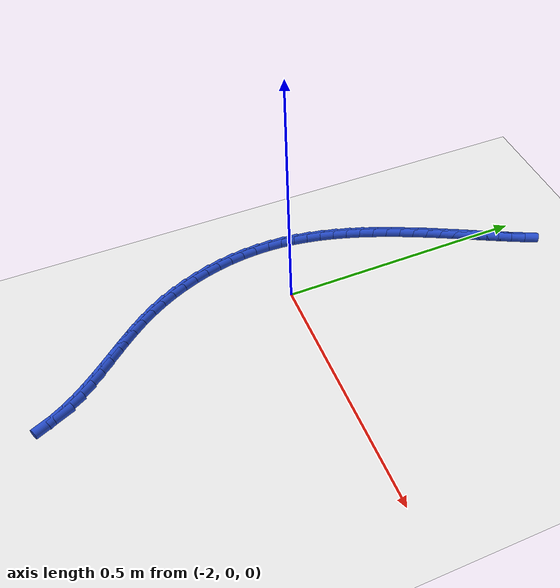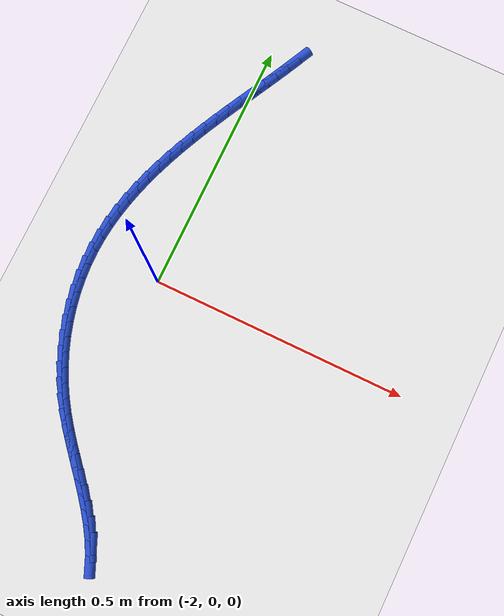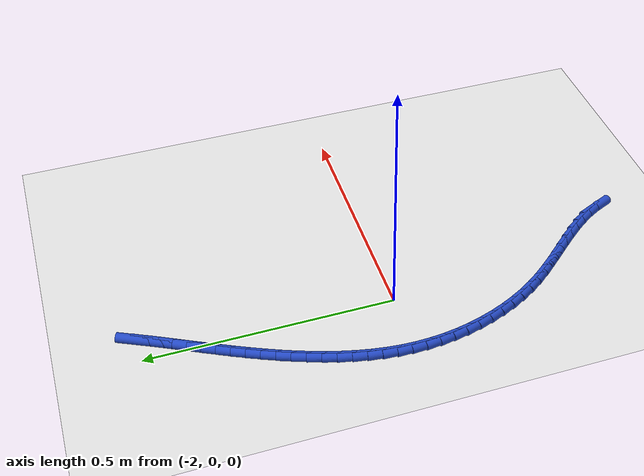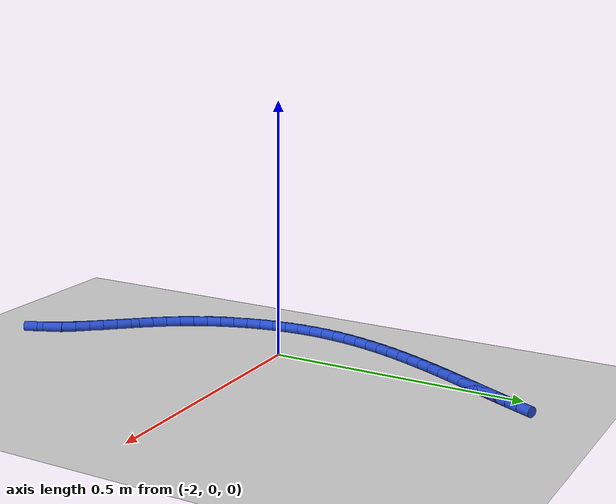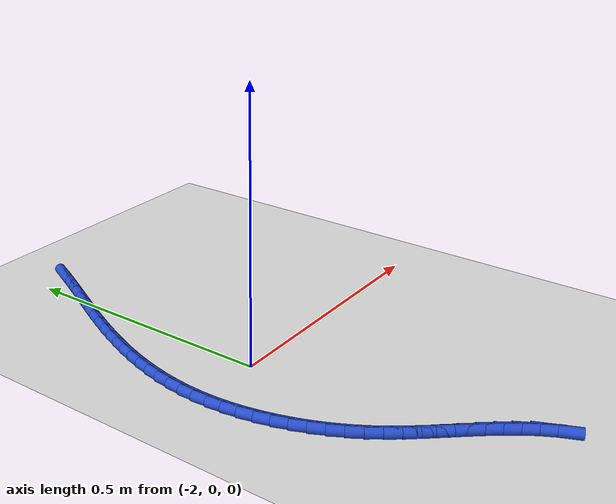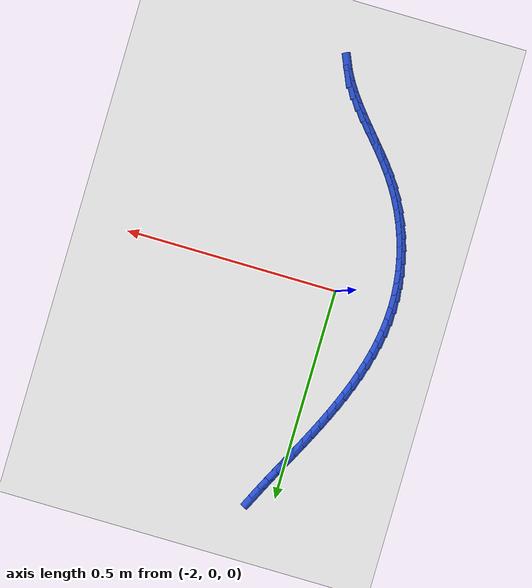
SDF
<sdf version="1.6">
 <world name="default">
  <model name="ground_plane">
   <static>1</static>
   <link name="link">
    <collision name="collision">
     <geometry><plane><normal>0 0 1</normal><size>100 100</size></plane></geometry>
     <surface><friction><ode><mu>100</mu><mu2>50</mu2></ode></friction></surface>
    </collision>
    <visual name="visual">
     <cast_shadows>0</cast_shadows>
     <geometry><plane><normal>0 0 1</normal><size>100 100</size></plane></geometry>
     <material>
      <script><uri>file://media/materials/scripts/gazebo.material</uri><name>Gazebo/WhiteGlow</name></script>
     </material>
    </visual>
   </link>
  </model>
  <model name="line">
   <link name="link_101">
    <pose>-1.9530338869086277 0.4996848741113469 0.01 0 1.57 1.114196634679016</pose>
    <collision name="collision">
     <geometry><cylinder><radius>0.01</radius><length>0.08</length></cylinder></geometry>
    </collision>
    <visual name="visual">
     <material>
      <script><name>Gazebo/Blue</name><uri>file://media/materials/scripts/gazebo.material</uri></script>
     </material>
     <geometry><cylinder><radius>0.01</radius><length>0.08</length></cylinder></geometry>
    </visual>
   </link>
   <link name="link_102">
    <pose>-1.965360853261522 0.47459032609833357 0.01 0 1.57 1.1027418164881235</pose>
    <collision name="collision">
     <geometry><cylinder><radius>0.01</radius><length>0.08</length></cylinder></geometry>
    </collision>
    <visual name="visual">
     <material>
      <script><name>Gazebo/Blue</name><uri>file://media/materials/scripts/gazebo.material</uri></script>
     </material>
     <geometry><cylinder><radius>0.01</radius><length>0.08</length></cylinder></geometry>
    </visual>
   </link>
   <link name="link_103">
    <pose>-1.9778984266809578 0.4497890266388718 0.01 0 1.57 1.095510572376092</pose>
    <collision name="collision">
     <geometry><cylinder><radius>0.01</radius><length>0.08</length></cylinder></geometry>
    </collision>
    <visual name="visual">
     <material>
      <script><name>Gazebo/Blue</name><uri>file://media/materials/scripts/gazebo.material</uri></script>
     </material>
     <geometry><cylinder><radius>0.01</radius><length>0.08</length></cylinder></geometry>
    </visual>
   </link>
   <link name="link_104">
    <pose>-1.9905785888686636 0.42514981778400085 0.01 0 1.57 1.092607699348567</pose>
    <collision name="collision">
     <geometry><cylinder><radius>0.01</radius><length>0.08</length></cylinder></geometry>
    </collision>
    <visual name="visual">
     <material>
      <script><name>Gazebo/Blue</name><uri>file://media/materials/scripts/gazebo.material</uri></script>
     </material>
     <geometry><cylinder><radius>0.01</radius><length>0.08</length></cylinder></geometry>
    </visual>
   </link>
   <link name="link_105">
    <pose>-2.003333321526366 0.4005415415847607 0.01 0 1.57 1.0940569829507378</pose>
    <collision name="collision">
     <geometry><cylinder><radius>0.01</radius><length>0.08</length></cylinder></geometry>
    </collision>
    <visual name="visual">
     <material>
      <script><name>Gazebo/Blue</name><uri>file://media/materials/scripts/gazebo.material</uri></script>
     </material>
     <geometry><cylinder><radius>0.01</radius><length>0.08</length></cylinder></geometry>
    </visual>
   </link>
   <link name="link_106">
    <pose>-2.016094606355793 0.37583304009219004 0.01 0 1.57 1.0998020782813458</pose>
    <collision name="collision">
     <geometry><cylinder><radius>0.01</radius><length>0.08</length></cylinder></geometry>
    </collision>
    <visual name="visual">
     <material>
      <script><name>Gazebo/Blue</name><uri>file://media/materials/scripts/gazebo.material</uri></script>
     </material>
     <geometry><cylinder><radius>0.01</radius><length>0.08</length></cylinder></geometry>
    </visual>
   </link>
   <link name="link_107">
    <pose>-2.028794416352748 0.35089317765342354 0.01 0 1.57 1.1095997850768602</pose>
    <collision name="collision">
     <geometry><cylinder><radius>0.01</radius><length>0.08</length></cylinder></geometry>
    </collision>
    <visual name="visual">
     <material>
      <script><name>Gazebo/Blue</name><uri>file://media/materials/scripts/gazebo.material</uri></script>
     </material>
     <geometry><cylinder><radius>0.01</radius><length>0.08</length></cylinder></geometry>
    </visual>
   </link>
   <link name="link_108">
    <pose>-2.041352094635243 0.325623164057213 0.01 0 1.57 1.1230199679160802</pose>
    <collision name="collision">
     <geometry><cylinder><radius>0.01</radius><length>0.08</length></cylinder></geometry>
    </collision>
    <visual name="visual">
     <material>
      <script><name>Gazebo/Blue</name><uri>file://media/materials/scripts/gazebo.material</uri></script>
     </material>
     <geometry><cylinder><radius>0.01</radius><length>0.08</length></cylinder></geometry>
    </visual>
   </link>
   <link name="link_109">
    <pose>-2.053649102814853 0.3000212246038629 0.01 0 1.57 1.1400186239832761</pose>
    <collision name="collision">
     <geometry><cylinder><radius>0.01</radius><length>0.08</length></cylinder></geometry>
    </collision>
    <visual name="visual">
     <material>
      <script><name>Gazebo/Blue</name><uri>file://media/materials/scripts/gazebo.material</uri></script>
     </material>
     <geometry><cylinder><radius>0.01</radius><length>0.08</length></cylinder></geometry>
    </visual>
   </link>
   <link name="link_110">
    <pose>-2.0655598300589872 0.2741036973049532 0.01 0 1.57 1.1606613923672933</pose>
    <collision name="collision">
     <geometry><cylinder><radius>0.01</radius><length>0.08</length></cylinder></geometry>
    </collision>
    <visual name="visual">
     <material>
      <script><name>Gazebo/Blue</name><uri>file://media/materials/scripts/gazebo.material</uri></script>
     </material>
     <geometry><cylinder><radius>0.01</radius><length>0.08</length></cylinder></geometry>
    </visual>
   </link>
   <link name="link_111">
    <pose>-2.076958665535054 0.2478869201720635 0.01 0 1.57 1.1850485962658124</pose>
    <collision name="collision">
     <geometry><cylinder><radius>0.01</radius><length>0.08</length></cylinder></geometry>
    </collision>
    <visual name="visual">
     <material>
      <script><name>Gazebo/Blue</name><uri>file://media/materials/scripts/gazebo.material</uri></script>
     </material>
     <geometry><cylinder><radius>0.01</radius><length>0.08</length></cylinder></geometry>
    </visual>
   </link>
   <link name="link_112">
    <pose>-2.0877199984104613 0.22138723121677342 0.01 0 1.57 1.2133079213340239</pose>
    <collision name="collision">
     <geometry><cylinder><radius>0.01</radius><length>0.08</length></cylinder></geometry>
    </collision>
    <visual name="visual">
     <material>
      <script><name>Gazebo/Blue</name><uri>file://media/materials/scripts/gazebo.material</uri></script>
     </material>
     <geometry><cylinder><radius>0.01</radius><length>0.08</length></cylinder></geometry>
    </visual>
   </link>
   <link name="link_113">
    <pose>-2.0977182178526186 0.19462096845066354 0.01 0 1.57 1.2455853774304833</pose>
    <collision name="collision">
     <geometry><cylinder><radius>0.01</radius><length>0.08</length></cylinder></geometry>
    </collision>
    <visual name="visual">
     <material>
      <script><name>Gazebo/Blue</name><uri>file://media/materials/scripts/gazebo.material</uri></script>
     </material>
     <geometry><cylinder><radius>0.01</radius><length>0.08</length></cylinder></geometry>
    </visual>
   </link>
   <link name="link_114">
    <pose>-2.1068277130289332 0.16760446988531327 0.01 0 1.57 1.2820336522140245</pose>
    <collision name="collision">
     <geometry><cylinder><radius>0.01</radius><length>0.08</length></cylinder></geometry>
    </collision>
    <visual name="visual">
     <material>
      <script><name>Gazebo/Blue</name><uri>file://media/materials/scripts/gazebo.material</uri></script>
     </material>
     <geometry><cylinder><radius>0.01</radius><length>0.08</length></cylinder></geometry>
    </visual>
   </link>
   <link name="link_115">
    <pose>-2.1149228731068157 0.14035407353230214 0.01 0 1.57 1.3227969641021649</pose>
    <collision name="collision">
     <geometry><cylinder><radius>0.01</radius><length>0.08</length></cylinder></geometry>
    </collision>
    <visual name="visual">
     <material>
      <script><name>Gazebo/Blue</name><uri>file://media/materials/scripts/gazebo.material</uri></script>
     </material>
     <geometry><cylinder><radius>0.01</radius><length>0.08</length></cylinder></geometry>
    </visual>
   </link>
   <link name="link_116">
    <pose>-2.121878087253672 0.11288611740321076 0.01 0 1.57 1.3679916756396568</pose>
    <collision name="collision">
     <geometry><cylinder><radius>0.01</radius><length>0.08</length></cylinder></geometry>
    </collision>
    <visual name="visual">
     <material>
      <script><name>Gazebo/Blue</name><uri>file://media/materials/scripts/gazebo.material</uri></script>
     </material>
     <geometry><cylinder><radius>0.01</radius><length>0.08</length></cylinder></geometry>
    </visual>
   </link>
   <link name="link_117">
    <pose>-2.1275677446369126 0.0852169395096186 0.01 0 1.57 1.4176823530589753</pose>
    <collision name="collision">
     <geometry><cylinder><radius>0.01</radius><length>0.08</length></cylinder></geometry>
    </collision>
    <visual name="visual">
     <material>
      <script><name>Gazebo/Blue</name><uri>file://media/materials/scripts/gazebo.material</uri></script>
     </material>
     <geometry><cylinder><radius>0.01</radius><length>0.08</length></cylinder></geometry>
    </visual>
   </link>
   <link name="link_118">
    <pose>-2.131866234423946 0.0573628778631056 0.01 0 1.57 1.471853780722434</pose>
    <collision name="collision">
     <geometry><cylinder><radius>0.01</radius><length>0.08</length></cylinder></geometry>
    </collision>
    <visual name="visual">
     <material>
      <script><name>Gazebo/Blue</name><uri>file://media/materials/scripts/gazebo.material</uri></script>
     </material>
     <geometry><cylinder><radius>0.01</radius><length>0.08</length></cylinder></geometry>
    </visual>
   </link>
   <link name="link_119">
    <pose>-2.13464794578218 0.02934027047525116 0.01 0 1.57 1.5303637172672915</pose>
    <collision name="collision">
     <geometry><cylinder><radius>0.01</radius><length>0.08</length></cylinder></geometry>
    </collision>
    <visual name="visual">
     <material>
      <script><name>Gazebo/Blue</name><uri>file://media/materials/scripts/gazebo.material</uri></script>
     </material>
     <geometry><cylinder><radius>0.01</radius><length>0.08</length></cylinder></geometry>
    </visual>
   </link>
   <link name="link_120">
    <pose>-2.1357877376453196 0.0011657178129403144 0.01 0 1.57 -1.5503920742651485</pose>
    <collision name="collision">
     <geometry><cylinder><radius>0.01</radius><length>0.08</length></cylinder></geometry>
    </collision>
    <visual name="visual">
     <material>
      <script><name>Gazebo/Blue</name><uri>file://media/materials/scripts/gazebo.material</uri></script>
     </material>
     <geometry><cylinder><radius>0.01</radius><length>0.08</length></cylinder></geometry>
    </visual>
   </link>
   <link name="link_121">
    <pose>-2.135210586577208 -0.027116179270437826 0.01 0 1.57 -1.4905508843568467</pose>
    <collision name="collision">
     <geometry><cylinder><radius>0.01</radius><length>0.08</length></cylinder></geometry>
    </collision>
    <visual name="visual">
     <material>
      <script><name>Gazebo/Blue</name><uri>file://media/materials/scripts/gazebo.material</uri></script>
     </material>
     <geometry><cylinder><radius>0.01</radius><length>0.08</length></cylinder></geometry>
    </visual>
   </link>
   <link name="link_122">
    <pose>-2.132935383058004 -0.0554083508412907 0.01 0 1.57 -1.4318362648283147</pose>
    <collision name="collision">
     <geometry><cylinder><radius>0.01</radius><length>0.08</length></cylinder></geometry>
    </collision>
    <visual name="visual">
     <material>
      <script><name>Gazebo/Blue</name><uri>file://media/materials/scripts/gazebo.material</uri></script>
     </material>
     <geometry><cylinder><radius>0.01</radius><length>0.08</length></cylinder></geometry>
    </visual>
   </link>
   <link name="link_123">
    <pose>-2.1289913449553346 -0.08360795712336169 0.01 0 1.57 -1.3739909068071887</pose>
    <collision name="collision">
     <geometry><cylinder><radius>0.01</radius><length>0.08</length></cylinder></geometry>
    </collision>
    <visual name="visual">
     <material>
      <script><name>Gazebo/Blue</name><uri>file://media/materials/scripts/gazebo.material</uri></script>
     </material>
     <geometry><cylinder><radius>0.01</radius><length>0.08</length></cylinder></geometry>
    </visual>
   </link>
   <link name="link_124">
    <pose>-2.1234076901368266 -0.11161215834039412 0.01 0 1.57 -1.3167493007988877</pose>
    <collision name="collision">
     <geometry><cylinder><radius>0.01</radius><length>0.08</length></cylinder></geometry>
    </collision>
    <visual name="visual">
     <material>
      <script><name>Gazebo/Blue</name><uri>file://media/materials/scripts/gazebo.material</uri></script>
     </material>
     <geometry><cylinder><radius>0.01</radius><length>0.08</length></cylinder></geometry>
    </visual>
   </link>
   <link name="link_125">
    <pose>-2.1162136364701034 -0.13931811471613192 0.01 0 1.57 -1.2598422371809712</pose>
    <collision name="collision">
     <geometry><cylinder><radius>0.01</radius><length>0.08</length></cylinder></geometry>
    </collision>
    <visual name="visual">
     <material>
      <script><name>Gazebo/Blue</name><uri>file://media/materials/scripts/gazebo.material</uri></script>
     </material>
     <geometry><cylinder><radius>0.01</radius><length>0.08</length></cylinder></geometry>
    </visual>
   </link>
   <link name="link_126">
    <pose>-2.1074384018227925 -0.166622986474317 0.01 0 1.57 -1.2030004830175172</pose>
    <collision name="collision">
     <geometry><cylinder><radius>0.01</radius><length>0.08</length></cylinder></geometry>
    </collision>
    <visual name="visual">
     <material>
      <script><name>Gazebo/Blue</name><uri>file://media/materials/scripts/gazebo.material</uri></script>
     </material>
     <geometry><cylinder><radius>0.01</radius><length>0.08</length></cylinder></geometry>
    </visual>
   </link>
   <link name="link_127">
    <pose>-2.09711120406252 -0.19342393383869333 0.01 0 1.57 -1.1459580327992736</pose>
    <collision name="collision">
     <geometry><cylinder><radius>0.01</radius><length>0.08</length></cylinder></geometry>
    </collision>
    <visual name="visual">
     <material>
      <script><name>Gazebo/Blue</name><uri>file://media/materials/scripts/gazebo.material</uri></script>
     </material>
     <geometry><cylinder><radius>0.01</radius><length>0.08</length></cylinder></geometry>
    </visual>
   </link>
   <link name="link_128">
    <pose>-2.0852612610569112 -0.2196181170330043 0.01 0 1.57 -1.0884553214263617</pose>
    <collision name="collision">
     <geometry><cylinder><radius>0.01</radius><length>0.08</length></cylinder></geometry>
    </collision>
    <visual name="visual">
     <material>
      <script><name>Gazebo/Blue</name><uri>file://media/materials/scripts/gazebo.material</uri></script>
     </material>
     <geometry><cylinder><radius>0.01</radius><length>0.08</length></cylinder></geometry>
    </visual>
   </link>
   <link name="link_129">
    <pose>-2.07191779067359 -0.24510269628099304 0.01 0 1.57 -1.0302427679231416</pose>
    <collision name="collision">
     <geometry><cylinder><radius>0.01</radius><length>0.08</length></cylinder></geometry>
    </collision>
    <visual name="visual">
     <material>
      <script><name>Gazebo/Blue</name><uri>file://media/materials/scripts/gazebo.material</uri></script>
     </material>
     <geometry><cylinder><radius>0.01</radius><length>0.08</length></cylinder></geometry>
    </visual>
   </link>
   <link name="link_130">
    <pose>-2.0571100107801854 -0.26977483180640305 0.01 0 1.57 -0.9714732631685052</pose>
    <collision name="collision">
     <geometry><cylinder><radius>0.01</radius><length>0.08</length></cylinder></geometry>
    </collision>
    <visual name="visual">
     <material>
      <script><name>Gazebo/Blue</name><uri>file://media/materials/scripts/gazebo.material</uri></script>
     </material>
     <geometry><cylinder><radius>0.01</radius><length>0.08</length></cylinder></geometry>
    </visual>
   </link>
   <link name="link_131">
    <pose>-2.0408754891740926 -0.293539270305672 0.01 0 1.57 -0.9201535259519719</pose>
    <collision name="collision">
     <geometry><cylinder><radius>0.01</radius><length>0.08</length></cylinder></geometry>
    </collision>
    <visual name="visual">
     <material>
      <script><name>Gazebo/Blue</name><uri>file://media/materials/scripts/gazebo.material</uri></script>
     </material>
     <geometry><cylinder><radius>0.01</radius><length>0.08</length></cylinder></geometry>
    </visual>
   </link>
   <link name="link_132">
    <pose>-2.023427491756931 -0.31646039201786086 0.01 0 1.57 -0.8839765862421466</pose>
    <collision name="collision">
     <geometry><cylinder><radius>0.01</radius><length>0.08</length></cylinder></geometry>
    </collision>
    <visual name="visual">
     <material>
      <script><name>Gazebo/Blue</name><uri>file://media/materials/scripts/gazebo.material</uri></script>
     </material>
     <geometry><cylinder><radius>0.01</radius><length>0.08</length></cylinder></geometry>
    </visual>
   </link>
   <link name="link_133">
    <pose>-2.0051463522454647 -0.3387543695266763 0.01 0 1.57 -0.8630844795093032</pose>
    <collision name="collision">
     <geometry><cylinder><radius>0.01</radius><length>0.08</length></cylinder></geometry>
    </collision>
    <visual name="visual">
     <material>
      <script><name>Gazebo/Blue</name><uri>file://media/materials/scripts/gazebo.material</uri></script>
     </material>
     <geometry><cylinder><radius>0.01</radius><length>0.08</length></cylinder></geometry>
    </visual>
   </link>
   <link name="link_134">
    <pose>-1.9864190268556303 -0.36064339240166027 0.01 0 1.57 -0.8573778164419092</pose>
    <collision name="collision">
     <geometry><cylinder><radius>0.01</radius><length>0.08</length></cylinder></geometry>
    </collision>
    <visual name="visual">
     <material>
      <script><name>Gazebo/Blue</name><uri>file://media/materials/scripts/gazebo.material</uri></script>
     </material>
     <geometry><cylinder><radius>0.01</radius><length>0.08</length></cylinder></geometry>
    </visual>
   </link>
   <link name="link_135">
    <pose>-1.9676324718033642 -0.38234965021235384 0.01 0 1.57 -0.8669701136964764</pose>
    <collision name="collision">
     <geometry><cylinder><radius>0.01</radius><length>0.08</length></cylinder></geometry>
    </collision>
    <visual name="visual">
     <material>
      <script><name>Gazebo/Blue</name><uri>file://media/materials/scripts/gazebo.material</uri></script>
     </material>
     <geometry><cylinder><radius>0.01</radius><length>0.08</length></cylinder></geometry>
    </visual>
   </link>
   <link name="link_136">
    <pose>-1.9491736433046032 -0.4040953325282981 0.01 0 1.57 -0.8922349989008493</pose>
    <collision name="collision">
     <geometry><cylinder><radius>0.01</radius><length>0.08</length></cylinder></geometry>
    </collision>
    <visual name="visual">
     <material>
      <script><name>Gazebo/Blue</name><uri>file://media/materials/scripts/gazebo.material</uri></script>
     </material>
     <geometry><cylinder><radius>0.01</radius><length>0.08</length></cylinder></geometry>
    </visual>
   </link>
   <link name="link_137">
    <pose>-1.931429497575285 -0.4261026289190344 0.01 0 1.57 -0.9337520639314055</pose>
    <collision name="collision">
     <geometry><cylinder><radius>0.01</radius><length>0.08</length></cylinder></geometry>
    </collision>
    <visual name="visual">
     <material>
      <script><name>Gazebo/Blue</name><uri>file://media/materials/scripts/gazebo.material</uri></script>
     </material>
     <geometry><cylinder><radius>0.01</radius><length>0.08</length></cylinder></geometry>
    </visual>
   </link>
   <link name="link_138">
    <pose>-1.9147869908313444 -0.4485937289541035 0.01 0 1.57 -0.992127388574214</pose>
    <collision name="collision">
     <geometry><cylinder><radius>0.01</radius><length>0.08</length></cylinder></geometry>
    </collision>
    <visual name="visual">
     <material>
      <script><name>Gazebo/Blue</name><uri>file://media/materials/scripts/gazebo.material</uri></script>
     </material>
     <geometry><cylinder><radius>0.01</radius><length>0.08</length></cylinder></geometry>
    </visual>
   </link>
   <link name="link_139">
    <pose>-1.89963307928872 -0.471790822203047 0.01 0 1.57 -1.0676521678364757</pose>
    <collision name="collision">
     <geometry><cylinder><radius>0.01</radius><length>0.08</length></cylinder></geometry>
    </collision>
    <visual name="visual">
     <material>
      <script><name>Gazebo/Blue</name><uri>file://media/materials/scripts/gazebo.material</uri></script>
     </material>
     <geometry><cylinder><radius>0.01</radius><length>0.08</length></cylinder></geometry>
    </visual>
   </link>
   <link name="link_140">
    <pose>-1.8863547191633472 -0.4959160982354065 0.01 0 1.57 -1.1597895579321627</pose>
    <collision name="collision">
     <geometry><cylinder><radius>0.01</radius><length>0.08</length></cylinder></geometry>
    </collision>
    <visual name="visual">
     <material>
      <script><name>Gazebo/Blue</name><uri>file://media/materials/scripts/gazebo.material</uri></script>
     </material>
     <geometry><cylinder><radius>0.01</radius><length>0.08</length></cylinder></geometry>
    </visual>
   </link>
  </model>
 </world>
</sdf>
